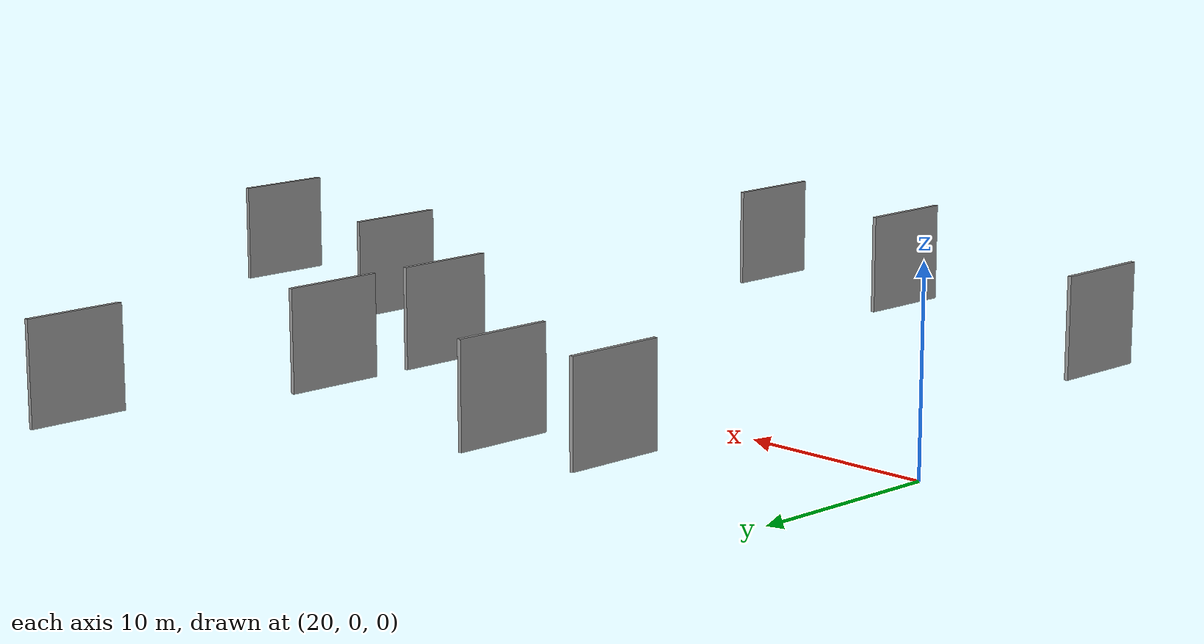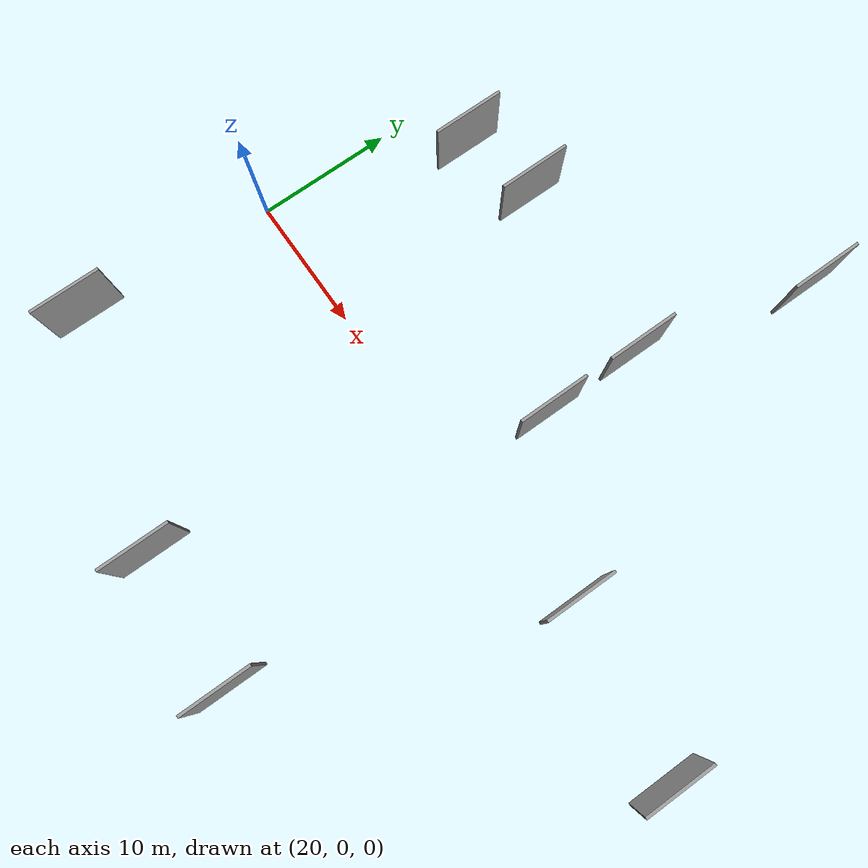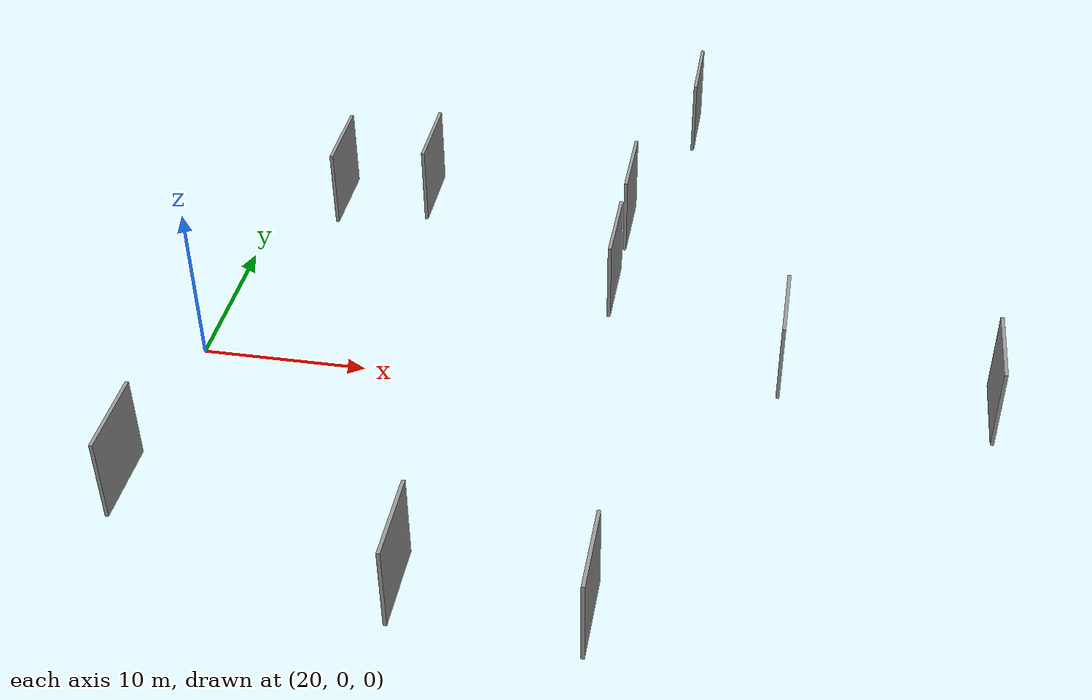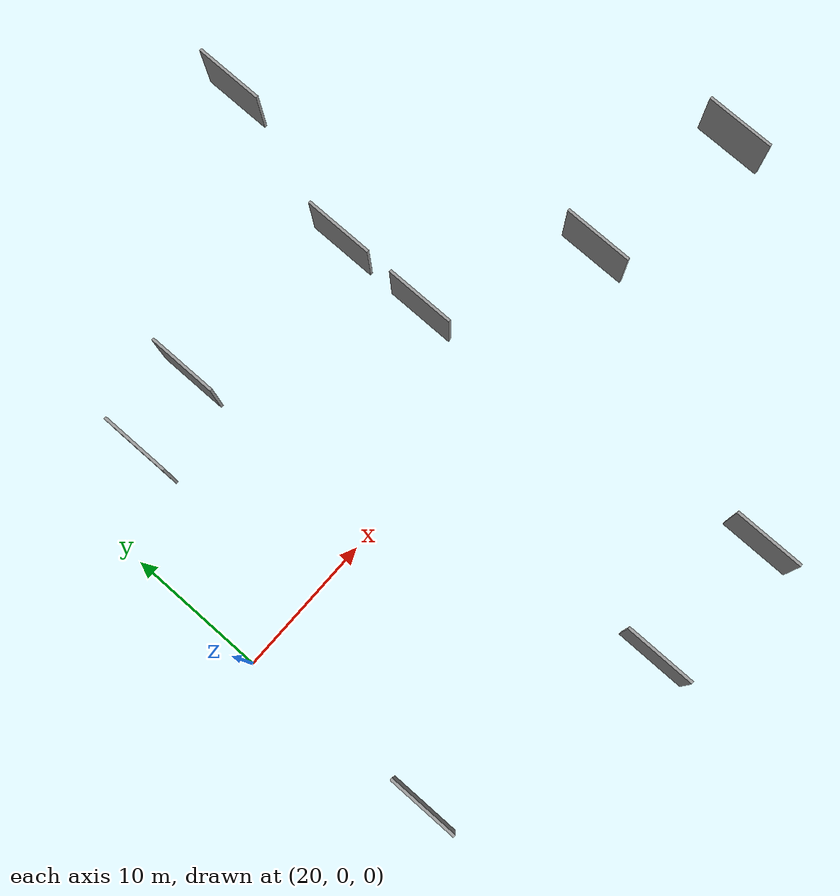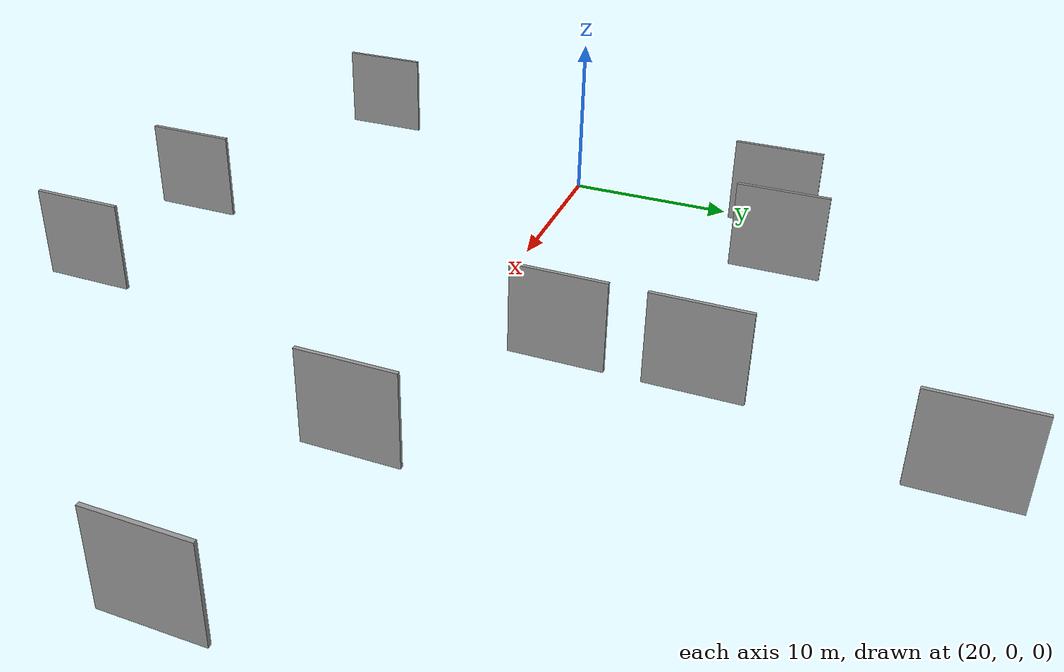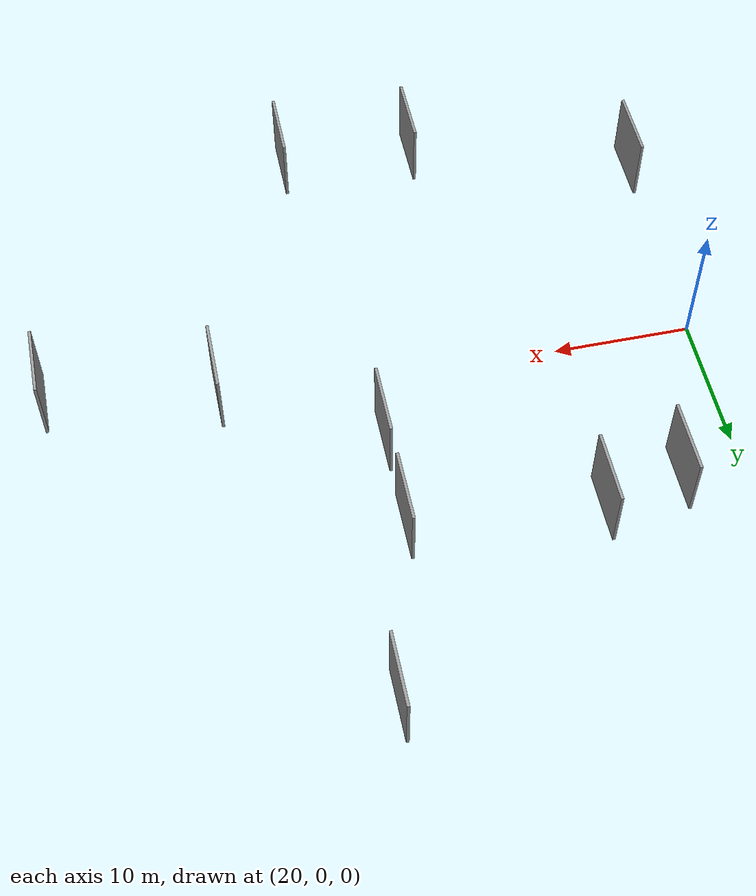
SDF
<sdf version="1.6">
 <world name="default">
  <scene>
   <sky><clouds><speed>12</speed></clouds></sky>
   <ambient>0.4 0.4 0.4 1</ambient>
   <background>0.7 0.7 0.7 1</background>
   <shadows>1</shadows>
  </scene>
  <gravity>0 0 -9.8066</gravity>
  <magnetic_field>6e-06 2.3e-05 -4.2e-05</magnetic_field>
  <physics default="0" name="default_physics" type="ode">
   <ode>
    <solver>
     <type>quick</type>
     <iters>10</iters>
     <sor>1.0</sor>
     <use_dynamic_moi_rescaling>0</use_dynamic_moi_rescaling>
    </solver>
    <constraints>
     <cfm>0</cfm>
     <erp>0.2</erp>
     <contact_max_correcting_vel>100</contact_max_correcting_vel>
     <contact_surface_layer>0.001</contact_surface_layer>
    </constraints>
   </ode>
   <max_step_size>0.004</max_step_size>
   <real_time_factor>1</real_time_factor>
   <real_time_update_rate>250</real_time_update_rate>
  </physics>
  <light name="sun" type="directional">
   <pose>0 0 10 0 0 0</pose>
   <diffuse>0.8 0.8 0.8 1</diffuse>
   <specular>0.2 0.2 0.2 1</specular>
   <attenuation>
    <range>1000</range>
    <constant>0.9</constant>
    <linear>0.01</linear>
    <quadratic>0.001</quadratic>
   </attenuation>
   <direction>-0.5 0.1 -0.9</direction>
  </light>
  <model name="grey_wall_1">
   <static>1</static>
   <pose>46.6711 -19.4799 2.5 0.000000 0.000000 1.570796</pose>
   <link name="link">
    <pose>0 0 2.50 0 0 0</pose>
    <collision name="collision"><geometry><box><size>5.00 0.2 5.00</size></box></geometry></collision>
    <visual name="visual">
     <cast_shadows>0</cast_shadows>
     <geometry><box><size>5.00 0.2 5.00</size></box></geometry>
     <material>
      <script>
       <uri>model://grey_wall/materials/scripts</uri>
       <uri>model://grey_wall/materials/textures</uri>
       <name>vrc/grey_wall</name>
      </script>
     </material>
    </visual>
   </link>
  </model>
  <model name="grey_wall_2">
   <static>1</static>
   <pose>31.0288 14.9390 2.5 0.000000 0.000000 1.570796</pose>
   <link name="link">
    <pose>0 0 2.50 0 0 0</pose>
    <collision name="collision"><geometry><box><size>5.00 0.2 5.00</size></box></geometry></collision>
    <visual name="visual">
     <cast_shadows>0</cast_shadows>
     <geometry><box><size>5.00 0.2 5.00</size></box></geometry>
     <material>
      <script>
       <uri>model://grey_wall/materials/scripts</uri>
       <uri>model://grey_wall/materials/textures</uri>
       <name>vrc/grey_wall</name>
      </script>
     </material>
    </visual>
   </link>
  </model>
  <model name="grey_wall_3">
   <static>1</static>
   <pose>20.7597 -14.1202 2.5 0.000000 0.000000 1.570796</pose>
   <link name="link">
    <pose>0 0 2.50 0 0 0</pose>
    <collision name="collision"><geometry><box><size>5.00 0.2 5.00</size></box></geometry></collision>
    <visual name="visual">
     <cast_shadows>0</cast_shadows>
     <geometry><box><size>5.00 0.2 5.00</size></box></geometry>
     <material>
      <script>
       <uri>model://grey_wall/materials/scripts</uri>
       <uri>model://grey_wall/materials/textures</uri>
       <name>vrc/grey_wall</name>
      </script>
     </material>
    </visual>
   </link>
  </model>
  <model name="grey_wall_4">
   <static>1</static>
   <pose>54.6091 0.8758 2.5 0.000000 0.000000 1.570796</pose>
   <link name="link">
    <pose>0 0 2.50 0 0 0</pose>
    <collision name="collision"><geometry><box><size>5.00 0.2 5.00</size></box></geometry></collision>
    <visual name="visual">
     <cast_shadows>0</cast_shadows>
     <geometry><box><size>5.00 0.2 5.00</size></box></geometry>
     <material>
      <script>
       <uri>model://grey_wall/materials/scripts</uri>
       <uri>model://grey_wall/materials/textures</uri>
       <name>vrc/grey_wall</name>
      </script>
     </material>
    </visual>
   </link>
  </model>
  <model name="grey_wall_5">
   <static>1</static>
   <pose>66.4319 -1.1131 2.5 0.000000 0.000000 1.570796</pose>
   <link name="link">
    <pose>0 0 2.50 0 0 0</pose>
    <collision name="collision"><geometry><box><size>5.00 0.2 5.00</size></box></geometry></collision>
    <visual name="visual">
     <cast_shadows>0</cast_shadows>
     <geometry><box><size>5.00 0.2 5.00</size></box></geometry>
     <material>
      <script>
       <uri>model://grey_wall/materials/scripts</uri>
       <uri>model://grey_wall/materials/textures</uri>
       <name>vrc/grey_wall</name>
      </script>
     </material>
    </visual>
   </link>
  </model>
  <model name="grey_wall_6">
   <static>1</static>
   <pose>25.4226 13.6982 2.5 0.000000 0.000000 1.570796</pose>
   <link name="link">
    <pose>0 0 2.50 0 0 0</pose>
    <collision name="collision"><geometry><box><size>5.00 0.2 5.00</size></box></geometry></collision>
    <visual name="visual">
     <cast_shadows>0</cast_shadows>
     <geometry><box><size>5.00 0.2 5.00</size></box></geometry>
     <material>
      <script>
       <uri>model://grey_wall/materials/scripts</uri>
       <uri>model://grey_wall/materials/textures</uri>
       <name>vrc/grey_wall</name>
      </script>
     </material>
    </visual>
   </link>
  </model>
  <model name="grey_wall_7">
   <static>1</static>
   <pose>44.1285 6.7250 2.5 0.000000 0.000000 1.570796</pose>
   <link name="link">
    <pose>0 0 2.50 0 0 0</pose>
    <collision name="collision"><geometry><box><size>5.00 0.2 5.00</size></box></geometry></collision>
    <visual name="visual">
     <cast_shadows>0</cast_shadows>
     <geometry><box><size>5.00 0.2 5.00</size></box></geometry>
     <material>
      <script>
       <uri>model://grey_wall/materials/scripts</uri>
       <uri>model://grey_wall/materials/textures</uri>
       <name>vrc/grey_wall</name>
      </script>
     </material>
    </visual>
   </link>
  </model>
  <model name="grey_wall_8">
   <static>1</static>
   <pose>44.1436 13.6129 2.5 0.000000 0.000000 1.570796</pose>
   <link name="link">
    <pose>0 0 2.50 0 0 0</pose>
    <collision name="collision"><geometry><box><size>5.00 0.2 5.00</size></box></geometry></collision>
    <visual name="visual">
     <cast_shadows>0</cast_shadows>
     <geometry><box><size>5.00 0.2 5.00</size></box></geometry>
     <material>
      <script>
       <uri>model://grey_wall/materials/scripts</uri>
       <uri>model://grey_wall/materials/textures</uri>
       <name>vrc/grey_wall</name>
      </script>
     </material>
    </visual>
   </link>
  </model>
  <model name="grey_wall_9">
   <static>1</static>
   <pose>47.1667 25.8991 2.5 0.000000 0.000000 1.570796</pose>
   <link name="link">
    <pose>0 0 2.50 0 0 0</pose>
    <collision name="collision"><geometry><box><size>5.00 0.2 5.00</size></box></geometry></collision>
    <visual name="visual">
     <cast_shadows>0</cast_shadows>
     <geometry><box><size>5.00 0.2 5.00</size></box></geometry>
     <material>
      <script>
       <uri>model://grey_wall/materials/scripts</uri>
       <uri>model://grey_wall/materials/textures</uri>
       <name>vrc/grey_wall</name>
      </script>
     </material>
    </visual>
   </link>
  </model>
  <model name="grey_wall_10">
   <static>1</static>
   <pose>36.8818 -18.9912 2.5 0.000000 0.000000 1.570796</pose>
   <link name="link">
    <pose>0 0 2.50 0 0 0</pose>
    <collision name="collision"><geometry><box><size>5.00 0.2 5.00</size></box></geometry></collision>
    <visual name="visual">
     <cast_shadows>0</cast_shadows>
     <geometry><box><size>5.00 0.2 5.00</size></box></geometry>
     <material>
      <script>
       <uri>model://grey_wall/materials/scripts</uri>
       <uri>model://grey_wall/materials/textures</uri>
       <name>vrc/grey_wall</name>
      </script>
     </material>
    </visual>
   </link>
  </model>
 </world>
</sdf>
